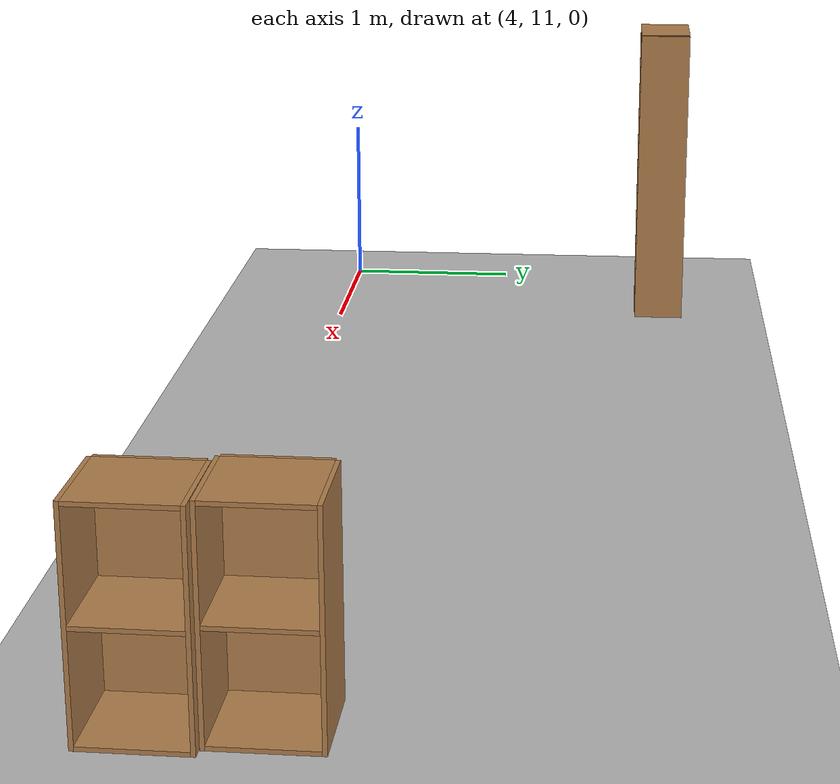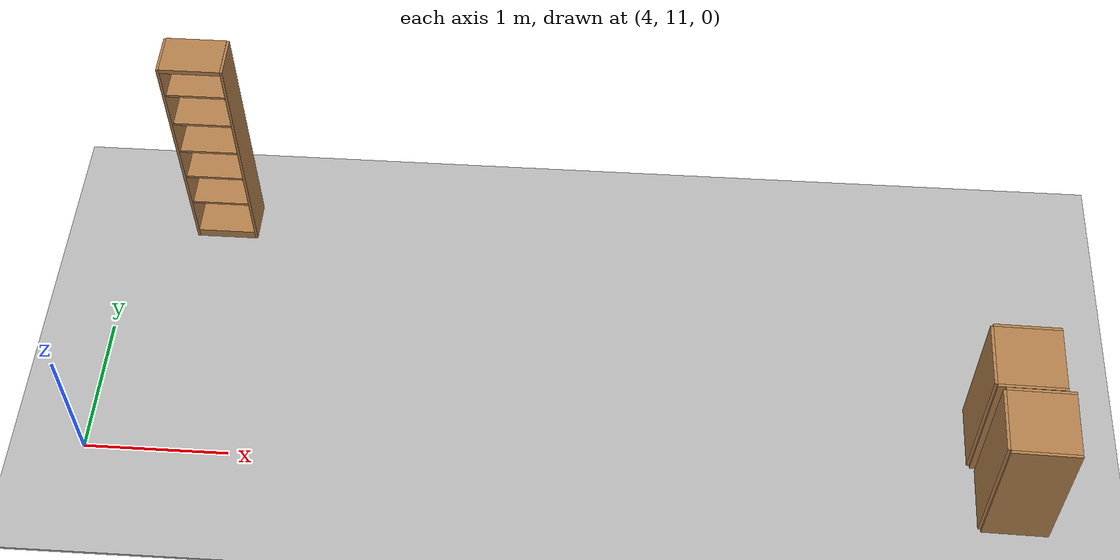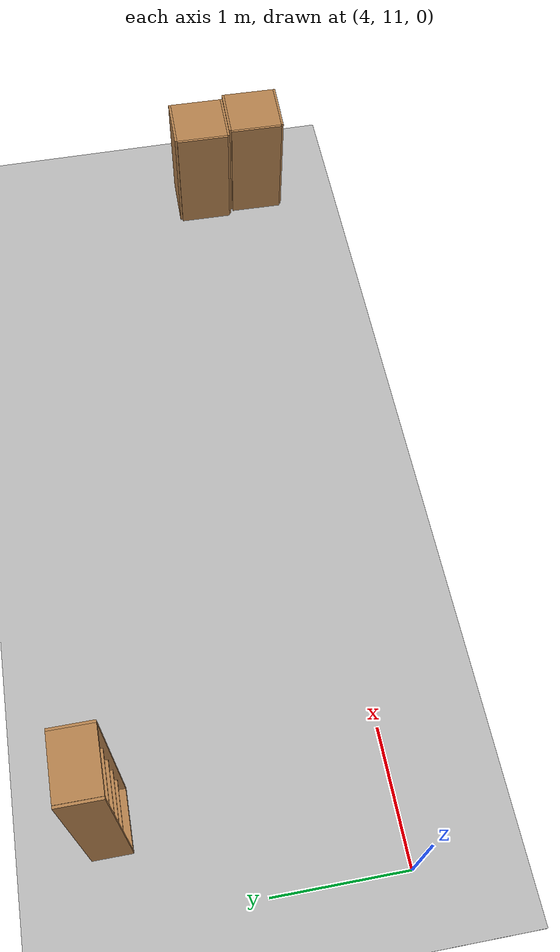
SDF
<sdf version="1.6">
 <world name="default">
  <model name="gplane">
   <pose>5.0375 6.59 0 0 -0 0</pose>
   <link name="body">
    <collision name="gplane_coll">
     <geometry><plane><normal>0 0 1</normal><size>10.075 13.18</size></plane></geometry>
     <surface><contact><ode><kp>1e+06</kp><kd>1</kd></ode></contact></surface>
     <laser_retro>2000</laser_retro>
    </collision>
    <visual name="gplane_vis">
     <geometry><plane><normal>0 0 1</normal><size>10.075 13.18</size></plane></geometry>
     <material>
      <script>
       <uri>model://base_materials/carpet/scripts</uri>
       <uri>model://base_materials/carpet/textures</uri>
       <name>carpet/carpet01</name>
      </script>
     </material>
     <cast_shadows>0</cast_shadows>
    </visual>
    <velocity_decay><linear>0</linear><angular>0</angular></velocity_decay>
   </link>
   <static>1</static>
  </model>
  <model name="high_shelf01">
   <link name="link">
    <inertial>
     <mass>5</mass>
     <inertia><ixx>1</ixx><ixy>0</ixy><ixz>0</ixz><iyy>1</iyy><iyz>0</iyz><izz>1</izz></inertia>
    </inertial>
    <visual name="left_board">
     <pose>-0.1475 0.009 0.898 0 -0 0</pose>
     <geometry><box><size>0.295 0.018 1.796</size></box></geometry>
     <material>
      <script>
       <uri>model://base_materials/wood/scripts</uri>
       <uri>model://base_materials/wood/textures</uri>
       <name>base_materials/light_wood</name>
      </script>
     </material>
    </visual>
    <collision name="collision_left_board">
     <pose>-0.1475 0.009 0.898 0 -0 0</pose>
     <geometry><box><size>0.295 0.018 1.796</size></box></geometry>
    </collision>
    <visual name="right_board">
     <pose>-0.1475 0.441 0.898 0 -0 0</pose>
     <geometry><box><size>0.295 0.018 1.796</size></box></geometry>
     <material>
      <script>
       <uri>model://base_materials/wood/scripts</uri>
       <uri>model://base_materials/wood/textures</uri>
       <name>base_materials/light_wood</name>
      </script>
     </material>
    </visual>
    <collision name="collision_right_board">
     <pose>-0.1475 0.441 0.898 0 -0 0</pose>
     <geometry><box><size>0.295 0.018 1.796</size></box></geometry>
    </collision>
    <visual name="top_board">
     <pose>-0.1475 0.225 1.7825 0 -0 0</pose>
     <geometry><box><size>0.295 0.414 0.035</size></box></geometry>
     <material>
      <script>
       <uri>model://base_materials/wood/scripts</uri>
       <uri>model://base_materials/wood/textures</uri>
       <name>base_materials/light_wood</name>
      </script>
     </material>
    </visual>
    <collision name="collision_top_board">
     <pose>-0.1475 0.225 1.7825 0 -0 0</pose>
     <geometry><box><size>0.295 0.414 0.035</size></box></geometry>
    </collision>
    <visual name="1st_shelf">
     <pose>-0.162 0.225 1.51 0 -0 0</pose>
     <geometry><box><size>0.266 0.414 0.018</size></box></geometry>
     <material>
      <script>
       <uri>model://base_materials/wood/scripts</uri>
       <uri>model://base_materials/wood/textures</uri>
       <name>base_materials/light_wood</name>
      </script>
     </material>
    </visual>
    <collision name="collision_1st_shelf">
     <pose>-0.162 0.225 1.51 0 -0 0</pose>
     <geometry><box><size>0.266 0.414 0.018</size></box></geometry>
    </collision>
    <visual name="2nd_shelf">
     <pose>-0.162 0.225 1.22 0 -0 0</pose>
     <geometry><box><size>0.266 0.414 0.018</size></box></geometry>
     <material>
      <script>
       <uri>model://base_materials/wood/scripts</uri>
       <uri>model://base_materials/wood/textures</uri>
       <name>base_materials/light_wood</name>
      </script>
     </material>
    </visual>
    <collision name="collision_2nd_shelf">
     <pose>-0.162 0.225 1.22 0 -0 0</pose>
     <geometry><box><size>0.266 0.414 0.018</size></box></geometry>
    </collision>
    <visual name="3rd_shelf">
     <pose>-0.162 0.225 0.93 0 -0 0</pose>
     <geometry><box><size>0.266 0.414 0.018</size></box></geometry>
     <material>
      <script>
       <uri>model://base_materials/wood/scripts</uri>
       <uri>model://base_materials/wood/textures</uri>
       <name>base_materials/light_wood</name>
      </script>
     </material>
    </visual>
    <collision name="collision_3rd_shelf">
     <pose>-0.162 0.225 0.93 0 -0 0</pose>
     <geometry><box><size>0.266 0.414 0.018</size></box></geometry>
    </collision>
    <visual name="4th_shelf">
     <pose>-0.162 0.225 0.65 0 -0 0</pose>
     <geometry><box><size>0.266 0.414 0.018</size></box></geometry>
     <material>
      <script>
       <uri>model://base_materials/wood/scripts</uri>
       <uri>model://base_materials/wood/textures</uri>
       <name>base_materials/light_wood</name>
      </script>
     </material>
    </visual>
    <collision name="collision_4th_shelf">
     <pose>-0.162 0.225 0.65 0 -0 0</pose>
     <geometry><box><size>0.266 0.414 0.018</size></box></geometry>
    </collision>
    <visual name="5th_shelf">
     <pose>-0.162 0.225 0.36 0 -0 0</pose>
     <geometry><box><size>0.266 0.414 0.018</size></box></geometry>
     <material>
      <script>
       <uri>model://base_materials/wood/scripts</uri>
       <uri>model://base_materials/wood/textures</uri>
       <name>base_materials/light_wood</name>
      </script>
     </material>
    </visual>
    <collision name="collision_5th_shelf">
     <pose>-0.162 0.225 0.36 0 -0 0</pose>
     <geometry><box><size>0.266 0.414 0.018</size></box></geometry>
    </collision>
    <visual name="bottom_board">
     <pose>-0.1475 0.225 0.035 0 -0 0</pose>
     <geometry><box><size>0.295 0.414 0.07</size></box></geometry>
     <material>
      <script>
       <uri>model://base_materials/wood/scripts</uri>
       <uri>model://base_materials/wood/textures</uri>
       <name>base_materials/light_wood</name>
      </script>
     </material>
    </visual>
    <collision name="collision_bottom_board">
     <pose>-0.1475 0.225 0.035 0 -0 0</pose>
     <geometry><box><size>0.295 0.414 0.07</size></box></geometry>
    </collision>
    <visual name="back_board">
     <pose>-0.286 0.225 0.898 0 -0 0</pose>
     <geometry><box><size>0.018 0.414 1.796</size></box></geometry>
     <material>
      <script>
       <uri>model://base_materials/wood/scripts</uri>
       <uri>model://base_materials/wood/textures</uri>
       <name>base_materials/light_wood</name>
      </script>
     </material>
    </visual>
    <collision name="collision_back_board">
     <pose>-0.286 0.225 0.898 0 -0 0</pose>
     <geometry><box><size>0.018 0.414 1.796</size></box></geometry>
    </collision>
    <velocity_decay><linear>0</linear><angular>0</angular></velocity_decay>
   </link>
   <static>1</static>
   <pose>4.45 12.87 0 0 0 -1.5708</pose>
  </model>
  <model name="lawn_garden">
   <link name="link">
    <inertial>
     <mass>10</mass>
     <inertia><ixx>1</ixx><ixy>0</ixy><ixz>0</ixz><iyy>1</iyy><iyz>0</iyz><izz>1</izz></inertia>
    </inertial>
    <visual name="lawn_garden">
     <pose>0 0 -0.011 0 -0 0</pose>
     <geometry><box><size>14.075 17.185 0.02</size></box></geometry>
     <material>
      <script>
       <uri>model://base_materials/lawn/scripts/lawn.material</uri>
       <uri>model://base_materials/lawn/textures</uri>
       <name>lawn/lawn01</name>
      </script>
     </material>
    </visual>
    <collision name="collision_lawn_garden">
     <pose>0 0 -0.011 0 -0 0</pose>
     <geometry><box><size>14.075 17.185 0.02</size></box></geometry>
    </collision>
    <velocity_decay><linear>0</linear><angular>0</angular></velocity_decay>
   </link>
   <static>1</static>
   <pose>5.375 6.59 0 0 -0 0</pose>
  </model>
  <model name="cabinet_1">
   <static>1</static>
   <link name="cabinet_bottom_plate">
    <inertial>
     <pose>0 0 -1 0 -0 0</pose>
     <inertia><ixx>2.05</ixx><ixy>0</ixy><ixz>0</ixz><iyy>2.05</iyy><iyz>0</iyz><izz>2.05</izz></inertia>
     <mass>25</mass>
    </inertial>
    <collision name="cabinet_bottom_plate_geom">
     <pose>0 0 0.01 0 -0 0</pose>
     <geometry><box><size>0.45 0.45 0.02</size></box></geometry>
    </collision>
    <visual name="cabinet_bottom_plate_geom_visual">
     <pose>0 0 0.01 0 -0 0</pose>
     <geometry><box><size>0.45 0.45 0.02</size></box></geometry>
     <material>
      <script><uri>file://media/materials/scripts/gazebo.material</uri><name>Gazebo/Wood</name></script>
     </material>
    </visual>
    <collision name="cabinet_bottom_plate_geom_cabinet_back_plate">
     <pose>0.235 0 0.51 0 -0 0</pose>
     <geometry><box><size>0.02 0.45 1.02</size></box></geometry>
    </collision>
    <visual name="cabinet_bottom_plate_geom_cabinet_back_plate_visual">
     <pose>0.235 0 0.51 0 -0 0</pose>
     <geometry><box><size>0.02 0.45 1.02</size></box></geometry>
     <material>
      <script><uri>file://media/materials/scripts/gazebo.material</uri><name>Gazebo/Wood</name></script>
     </material>
    </visual>
    <collision name="cabinet_bottom_plate_geom_cabinet_left_plate">
     <pose>0 0.235 0.51 0 -0 0</pose>
     <geometry><box><size>0.45 0.02 1.02</size></box></geometry>
    </collision>
    <visual name="cabinet_bottom_plate_geom_cabinet_left_plate_visual">
     <pose>0 0.235 0.51 0 -0 0</pose>
     <geometry><box><size>0.45 0.02 1.02</size></box></geometry>
     <material>
      <script><uri>file://media/materials/scripts/gazebo.material</uri><name>Gazebo/Wood</name></script>
     </material>
    </visual>
    <collision name="cabinet_bottom_plate_geom_cabinet_middle_plate">
     <pose>0 0 0.51 0 -0 0</pose>
     <geometry><box><size>0.45 0.45 0.02</size></box></geometry>
    </collision>
    <visual name="cabinet_bottom_plate_geom_cabinet_middle_plate_visual">
     <pose>0 0 0.51 0 -0 0</pose>
     <geometry><box><size>0.45 0.45 0.02</size></box></geometry>
     <material>
      <script><uri>file://media/materials/scripts/gazebo.material</uri><name>Gazebo/Wood</name></script>
     </material>
    </visual>
    <collision name="cabinet_bottom_plate_geom_cabinet_right_plate">
     <pose>0 -0.235 0.51 0 -0 0</pose>
     <geometry><box><size>0.45 0.02 1.02</size></box></geometry>
    </collision>
    <visual name="cabinet_bottom_plate_geom_cabinet_right_plate_visual">
     <pose>0 -0.235 0.51 0 -0 0</pose>
     <geometry><box><size>0.45 0.02 1.02</size></box></geometry>
     <material>
      <script><uri>file://media/materials/scripts/gazebo.material</uri><name>Gazebo/Wood</name></script>
     </material>
    </visual>
    <collision name="cabinet_bottom_plate_geom_cabinet_top_plate">
     <pose>0 0 1.01 0 -0 0</pose>
     <geometry><box><size>0.45 0.45 0.02</size></box></geometry>
    </collision>
    <visual name="cabinet_bottom_plate_geom_cabinet_top_plate_visual">
     <pose>0 0 1.01 0 -0 0</pose>
     <geometry><box><size>0.45 0.45 0.02</size></box></geometry>
     <material>
      <script><uri>file://media/materials/scripts/gazebo.material</uri><name>Gazebo/Wood</name></script>
     </material>
    </visual>
   </link>
   <pose>10.3043 11.4488 0 0 -0 3.12579</pose>
  </model>
  <model name="cabinet_2">
   <static>1</static>
   <link name="cabinet_bottom_plate">
    <inertial>
     <pose>0 0 -1 0 -0 0</pose>
     <inertia><ixx>2.05</ixx><ixy>0</ixy><ixz>0</ixz><iyy>2.05</iyy><iyz>0</iyz><izz>2.05</izz></inertia>
     <mass>25</mass>
    </inertial>
    <collision name="cabinet_bottom_plate_geom">
     <pose>0 0 0.01 0 -0 0</pose>
     <geometry><box><size>0.45 0.45 0.02</size></box></geometry>
    </collision>
    <visual name="cabinet_bottom_plate_geom_visual">
     <pose>0 0 0.01 0 -0 0</pose>
     <geometry><box><size>0.45 0.45 0.02</size></box></geometry>
     <material>
      <script><uri>file://media/materials/scripts/gazebo.material</uri><name>Gazebo/Wood</name></script>
     </material>
    </visual>
    <collision name="cabinet_bottom_plate_geom_cabinet_back_plate">
     <pose>0.235 0 0.51 0 -0 0</pose>
     <geometry><box><size>0.02 0.45 1.02</size></box></geometry>
    </collision>
    <visual name="cabinet_bottom_plate_geom_cabinet_back_plate_visual">
     <pose>0.235 0 0.51 0 -0 0</pose>
     <geometry><box><size>0.02 0.45 1.02</size></box></geometry>
     <material>
      <script><uri>file://media/materials/scripts/gazebo.material</uri><name>Gazebo/Wood</name></script>
     </material>
    </visual>
    <collision name="cabinet_bottom_plate_geom_cabinet_left_plate">
     <pose>0 0.235 0.51 0 -0 0</pose>
     <geometry><box><size>0.45 0.02 1.02</size></box></geometry>
    </collision>
    <visual name="cabinet_bottom_plate_geom_cabinet_left_plate_visual">
     <pose>0 0.235 0.51 0 -0 0</pose>
     <geometry><box><size>0.45 0.02 1.02</size></box></geometry>
     <material>
      <script><uri>file://media/materials/scripts/gazebo.material</uri><name>Gazebo/Wood</name></script>
     </material>
    </visual>
    <collision name="cabinet_bottom_plate_geom_cabinet_middle_plate">
     <pose>0 0 0.51 0 -0 0</pose>
     <geometry><box><size>0.45 0.45 0.02</size></box></geometry>
    </collision>
    <visual name="cabinet_bottom_plate_geom_cabinet_middle_plate_visual">
     <pose>0 0 0.51 0 -0 0</pose>
     <geometry><box><size>0.45 0.45 0.02</size></box></geometry>
     <material>
      <script><uri>file://media/materials/scripts/gazebo.material</uri><name>Gazebo/Wood</name></script>
     </material>
    </visual>
    <collision name="cabinet_bottom_plate_geom_cabinet_right_plate">
     <pose>0 -0.235 0.51 0 -0 0</pose>
     <geometry><box><size>0.45 0.02 1.02</size></box></geometry>
    </collision>
    <visual name="cabinet_bottom_plate_geom_cabinet_right_plate_visual">
     <pose>0 -0.235 0.51 0 -0 0</pose>
     <geometry><box><size>0.45 0.02 1.02</size></box></geometry>
     <material>
      <script><uri>file://media/materials/scripts/gazebo.material</uri><name>Gazebo/Wood</name></script>
     </material>
    </visual>
    <collision name="cabinet_bottom_plate_geom_cabinet_top_plate">
     <pose>0 0 1.01 0 -0 0</pose>
     <geometry><box><size>0.45 0.45 0.02</size></box></geometry>
    </collision>
    <visual name="cabinet_bottom_plate_geom_cabinet_top_plate_visual">
     <pose>0 0 1.01 0 -0 0</pose>
     <geometry><box><size>0.45 0.45 0.02</size></box></geometry>
     <material>
      <script><uri>file://media/materials/scripts/gazebo.material</uri><name>Gazebo/Wood</name></script>
     </material>
    </visual>
   </link>
   <pose>10.3473 10.9559 0 0 -0 3.12253</pose>
  </model>
 </world>
</sdf>
